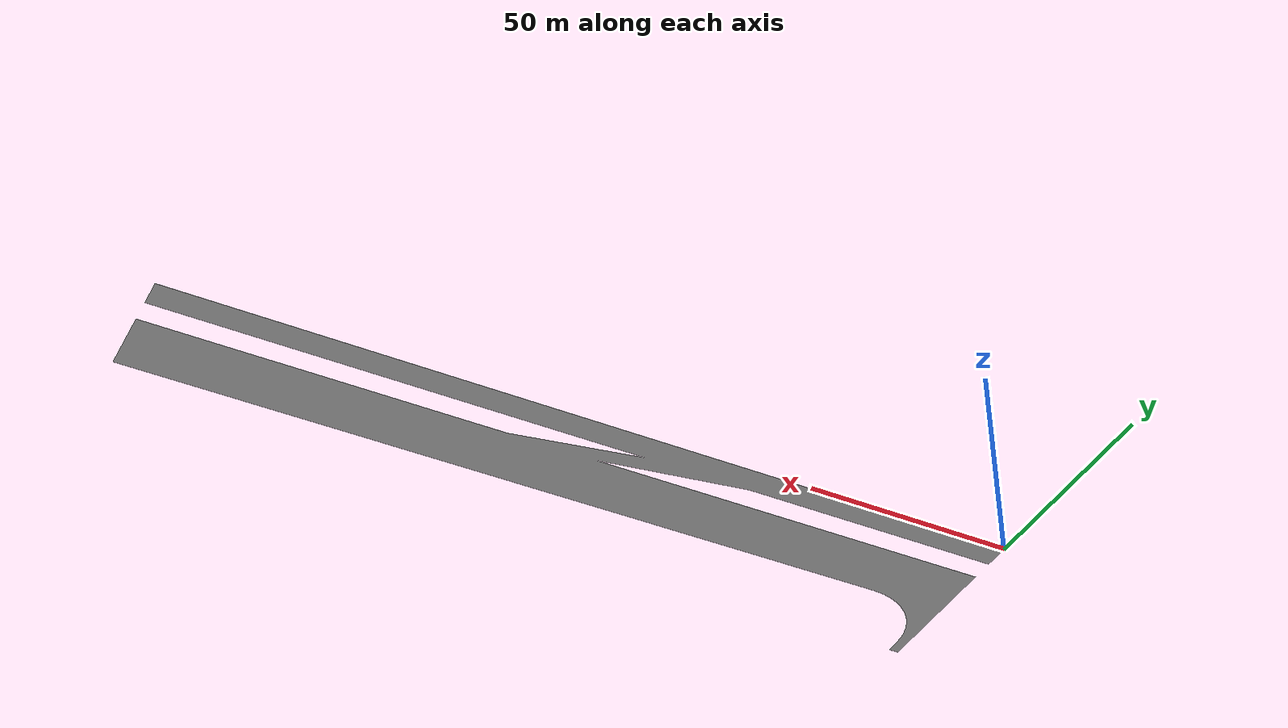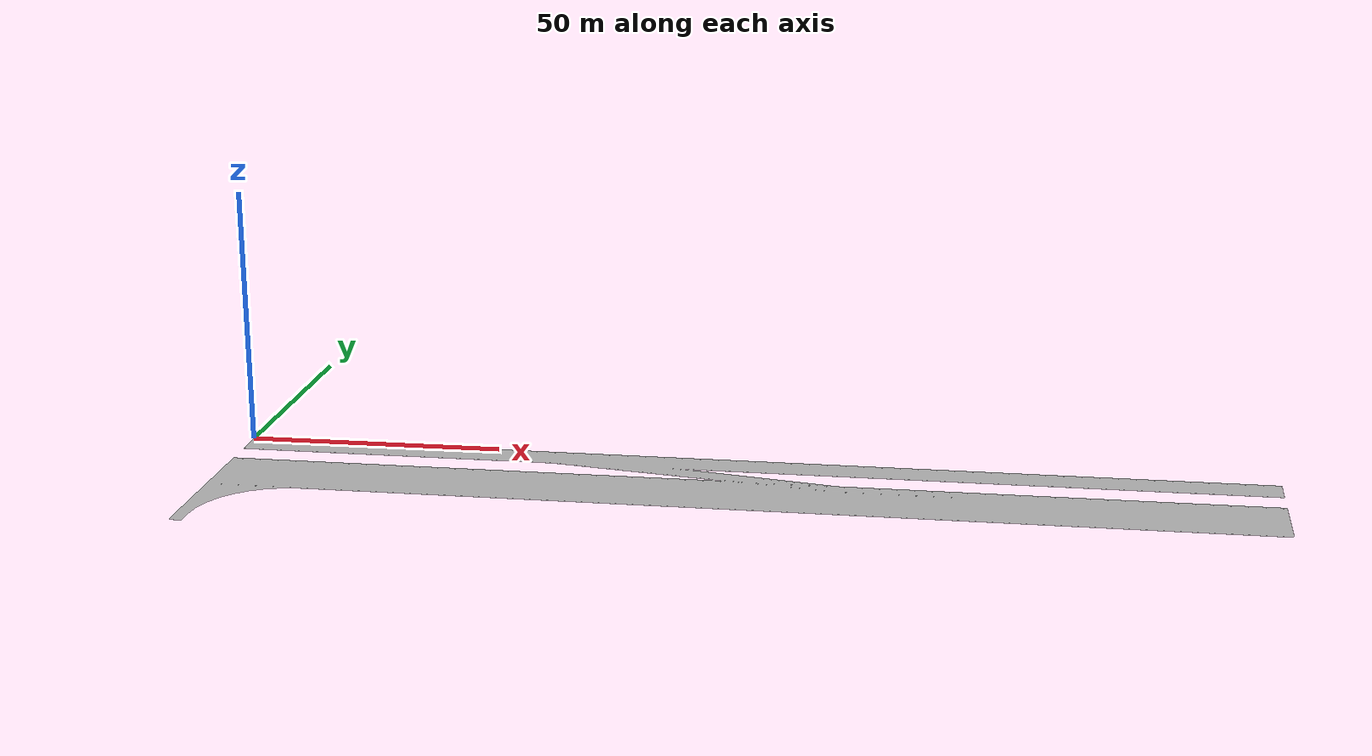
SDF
<?xml version="1.0" ?>
<sdf version="1.7">
  <model name="yol">
    <static>true</static>
    <link name="link">

      <visual name="visual">
        <geometry>
          <mesh>
            <uri>file:///home/yigit/shell_ws/src/parkour_pkg/models/model_files/meshes/yol.obj</uri>
          </mesh>
        </geometry>
      </visual>

      <collision name="collision">
        <pose>100 -20 -0.05 0 0 0</pose>
        <geometry>
          <box>
            <size>200 200 0.1</size>
          </box>
        </geometry>
        <surface>
          <friction>
            <ode>
              <mu>100</mu>
              <mu2>50</mu2>
            </ode>
          </friction>
        </surface>
      </collision>

    </link>
  </model>
</sdf>
